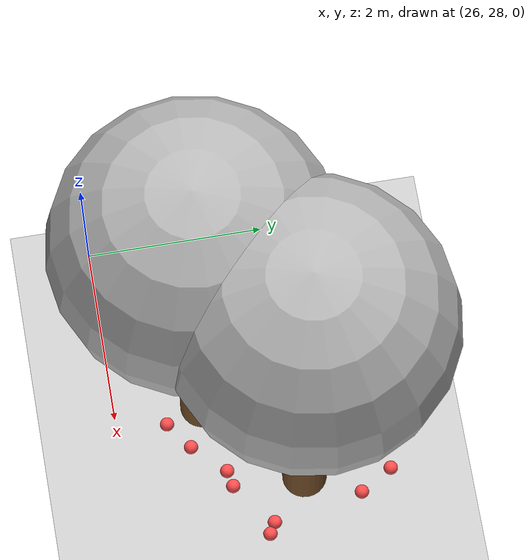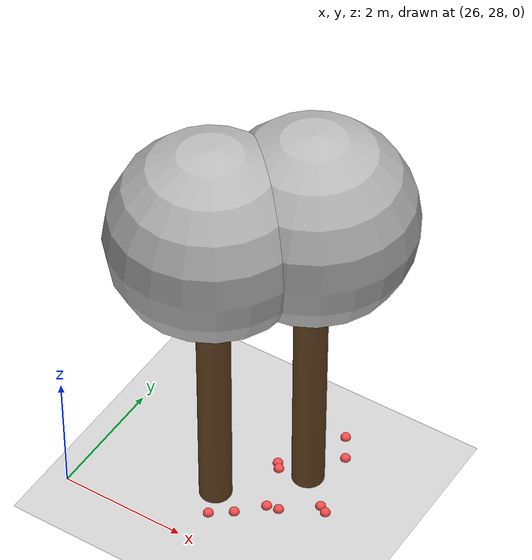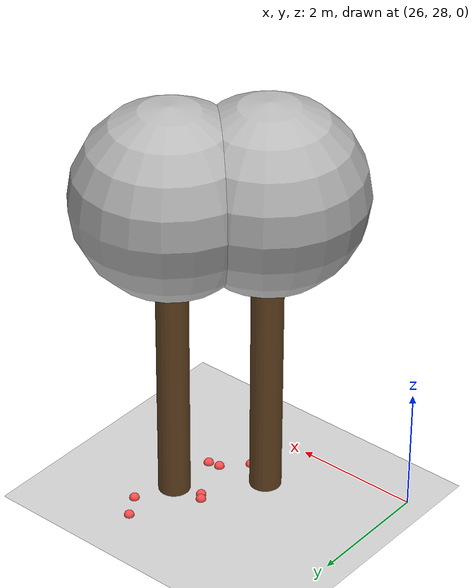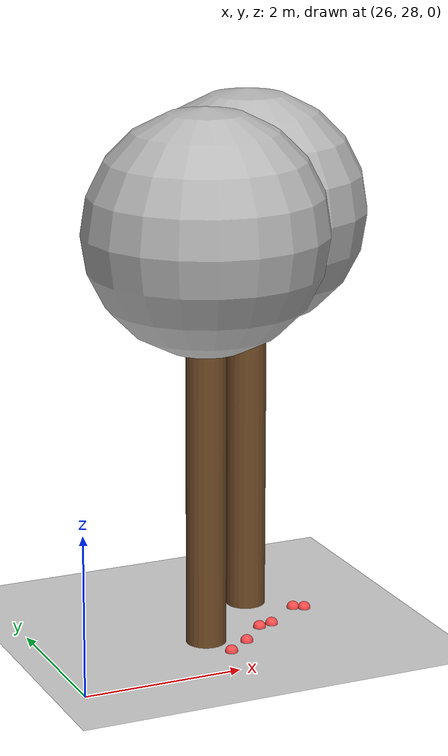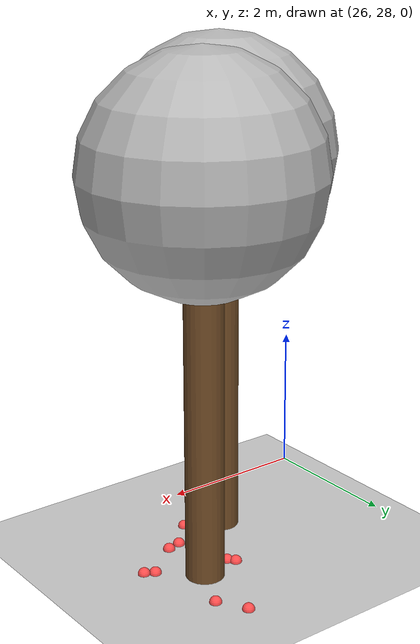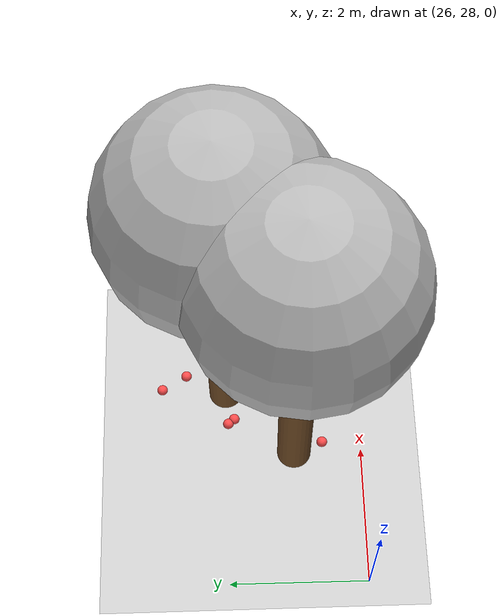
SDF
<sdf version="1.7">
 <world name="default">
  <model name="ground_plane">
   <static>1</static>
   <link name="link">
    <collision name="collision">
     <geometry><plane><normal>0 0 1</normal><size>100 100</size></plane></geometry>
     <surface>
      <contact><collide_bitmask>65535</collide_bitmask></contact>
      <friction><ode><mu>100</mu><mu2>50</mu2></ode></friction>
     </surface>
    </collision>
    <visual name="visual">
     <cast_shadows>0</cast_shadows>
     <geometry><plane><normal>0 0 1</normal><size>100 100</size></plane></geometry>
     <material>
      <script><uri>file://media/materials/scripts/gazebo.material</uri><name>Gazebo/Grey</name></script>
     </material>
    </visual>
   </link>
  </model>
  <model name="tree_simple_29">
   <static>1</static>
   <link name="link">
    <pose>0 0 0.1 0 -0 0</pose>
    <inertial>
     <mass>666</mass>
     <inertia>
      <ixx>0.0861167</ixx>
      <ixy>0</ixy>
      <ixz>0</ixz>
      <iyy>0.0861167</iyy>
      <iyz>0</iyz>
      <izz>0.0861167</izz>
     </inertia>
    </inertial>
    <collision name="collision_trunk">
     <pose>0 0 2 0 -0 0</pose>
     <geometry><cylinder><radius>0.25</radius><length>4</length></cylinder></geometry>
     <surface>
      <contact>
       <poissons_ratio>0.347</poissons_ratio>
       <elastic_modulus>8.8e+09</elastic_modulus>
       <ode><kp>100000</kp><kd>100</kd><max_vel>100</max_vel><min_depth>0.001</min_depth></ode>
      </contact>
      <friction>
       <torsional>
        <coefficient>1</coefficient>
        <use_patch_radius>0</use_patch_radius>
        <surface_radius>0.01</surface_radius>
       </torsional>
      </friction>
     </surface>
    </collision>
    <collision name="collision_treetop">
     <pose>0 0 5.2 0 -0 0</pose>
     <geometry><sphere><radius>1.5</radius></sphere></geometry>
     <surface>
      <contact>
       <poissons_ratio>0.347</poissons_ratio>
       <elastic_modulus>8.8e+09</elastic_modulus>
       <ode><kp>100000</kp><kd>100</kd><max_vel>100</max_vel><min_depth>0.001</min_depth></ode>
      </contact>
      <friction>
       <torsional>
        <coefficient>1</coefficient>
        <use_patch_radius>0</use_patch_radius>
        <surface_radius>0.01</surface_radius>
       </torsional>
      </friction>
     </surface>
    </collision>
    <visual name="trunk">
     <pose>0 0 2 0 -0 0</pose>
     <geometry><cylinder><radius>0.25</radius><length>4</length></cylinder></geometry>
     <material>
      <script>
       <uri>model://tree_simple/scripts</uri>
       <uri>model://tree_simple/materials/textures</uri>
       <name>TreeSimple/Trunk</name>
      </script>
     </material>
    </visual>
    <visual name="treetop">
     <pose>0 0 5.2 0 -0 0</pose>
     <geometry><sphere><radius>1.5</radius></sphere></geometry>
     <material>
      <script>
       <uri>model://tree_simple/scripts</uri>
       <uri>model://tree_simple/materials/textures</uri>
       <name>TreeSimple/Treetop</name>
      </script>
     </material>
    </visual>
   </link>
   <pose>29 30 -0.1 0 -0 0</pose>
  </model>
  <model name="tree_simple_31">
   <static>1</static>
   <link name="link">
    <pose>0 0 0.1 0 -0 0</pose>
    <inertial>
     <mass>666</mass>
     <inertia>
      <ixx>0.0861167</ixx>
      <ixy>0</ixy>
      <ixz>0</ixz>
      <iyy>0.0861167</iyy>
      <iyz>0</iyz>
      <izz>0.0861167</izz>
     </inertia>
    </inertial>
    <collision name="collision_trunk">
     <pose>0 0 2 0 -0 0</pose>
     <geometry><cylinder><radius>0.25</radius><length>4</length></cylinder></geometry>
     <surface>
      <contact>
       <poissons_ratio>0.347</poissons_ratio>
       <elastic_modulus>8.8e+09</elastic_modulus>
       <ode><kp>100000</kp><kd>100</kd><max_vel>100</max_vel><min_depth>0.001</min_depth></ode>
      </contact>
      <friction>
       <torsional>
        <coefficient>1</coefficient>
        <use_patch_radius>0</use_patch_radius>
        <surface_radius>0.01</surface_radius>
       </torsional>
      </friction>
     </surface>
    </collision>
    <collision name="collision_treetop">
     <pose>0 0 5.2 0 -0 0</pose>
     <geometry><sphere><radius>1.5</radius></sphere></geometry>
     <surface>
      <contact>
       <poissons_ratio>0.347</poissons_ratio>
       <elastic_modulus>8.8e+09</elastic_modulus>
       <ode><kp>100000</kp><kd>100</kd><max_vel>100</max_vel><min_depth>0.001</min_depth></ode>
      </contact>
      <friction>
       <torsional>
        <coefficient>1</coefficient>
        <use_patch_radius>0</use_patch_radius>
        <surface_radius>0.01</surface_radius>
       </torsional>
      </friction>
     </surface>
    </collision>
    <visual name="trunk">
     <pose>0 0 2 0 -0 0</pose>
     <geometry><cylinder><radius>0.25</radius><length>4</length></cylinder></geometry>
     <material>
      <script>
       <uri>model://tree_simple/scripts</uri>
       <uri>model://tree_simple/materials/textures</uri>
       <name>TreeSimple/Trunk</name>
      </script>
     </material>
    </visual>
    <visual name="treetop">
     <pose>0 0 5.2 0 -0 0</pose>
     <geometry><sphere><radius>1.5</radius></sphere></geometry>
     <material>
      <script>
       <uri>model://tree_simple/scripts</uri>
       <uri>model://tree_simple/materials/textures</uri>
       <name>TreeSimple/Treetop</name>
      </script>
     </material>
    </visual>
   </link>
   <pose>28 29 -0.1 0 -0 0</pose>
  </model>
  <model name="seed_red_124">
   <link name="link">
    <inertial>
     <mass>1</mass>
     <inertia><ixx>0.1</ixx><ixy>0</ixy><ixz>0</ixz><iyy>0.1</iyy><iyz>0</iyz><izz>0.1</izz></inertia>
    </inertial>
    <visual name="visual">
     <geometry><sphere><radius>0.08</radius></sphere></geometry>
     <material>
      <script><name>Gazebo/Grey</name><uri>file://media/materials/scripts/gazebo.material</uri></script>
      <shader type="pixel"><normal_map>__default__</normal_map></shader>
      <ambient>1 0.3 0.3 1</ambient>
      <diffuse>0.7 0.7 0.7 1</diffuse>
      <specular>0.01 0.01 0.01 1</specular>
      <emissive>0 0 0 1</emissive>
     </material>
    </visual>
    <collision name="collision">
     <geometry><sphere><radius>0.0005</radius></sphere></geometry>
     <surface>
      <friction>
       <ode><mu>1</mu><mu2>1</mu2><fdir1>0 0 0</fdir1><slip1>0</slip1><slip2>0</slip2></ode>
       <torsional>
        <coefficient>1</coefficient>
        <patch_radius>0</patch_radius>
        <surface_radius>0</surface_radius>
        <use_patch_radius>1</use_patch_radius>
        <ode><slip>0</slip></ode>
       </torsional>
      </friction>
      <bounce><restitution_coefficient>0</restitution_coefficient><threshold>1e+06</threshold></bounce>
      <contact>
       <collide_without_contact>0</collide_without_contact>
       <collide_without_contact_bitmask>1</collide_without_contact_bitmask>
       <collide_bitmask>1</collide_bitmask>
       <ode>
        <soft_cfm>0</soft_cfm>
        <soft_erp>0.2</soft_erp>
        <kp>1e+13</kp>
        <kd>1</kd>
        <max_vel>0.01</max_vel>
        <min_depth>0</min_depth>
       </ode>
       <bullet>
        <split_impulse>1</split_impulse>
        <split_impulse_penetration_threshold>-0.01</split_impulse_penetration_threshold>
        <soft_cfm>0</soft_cfm>
        <soft_erp>0.2</soft_erp>
        <kp>1e+13</kp>
        <kd>1</kd>
       </bullet>
      </contact>
     </surface>
    </collision>
   </link>
   <static>0</static>
   <pose>29.6052 29.5103 0.0005 0 -0 0</pose>
  </model>
  <model name="seed_red_125">
   <link name="link">
    <inertial>
     <mass>1</mass>
     <inertia><ixx>0.1</ixx><ixy>0</ixy><ixz>0</ixz><iyy>0.1</iyy><iyz>0</iyz><izz>0.1</izz></inertia>
    </inertial>
    <visual name="visual">
     <geometry><sphere><radius>0.08</radius></sphere></geometry>
     <material>
      <script><name>Gazebo/Grey</name><uri>file://media/materials/scripts/gazebo.material</uri></script>
      <shader type="pixel"><normal_map>__default__</normal_map></shader>
      <ambient>1 0.3 0.3 1</ambient>
      <diffuse>0.7 0.7 0.7 1</diffuse>
      <specular>0.01 0.01 0.01 1</specular>
      <emissive>0 0 0 1</emissive>
     </material>
    </visual>
    <collision name="collision">
     <geometry><sphere><radius>0.0005</radius></sphere></geometry>
     <surface>
      <friction>
       <ode><mu>1</mu><mu2>1</mu2><fdir1>0 0 0</fdir1><slip1>0</slip1><slip2>0</slip2></ode>
       <torsional>
        <coefficient>1</coefficient>
        <patch_radius>0</patch_radius>
        <surface_radius>0</surface_radius>
        <use_patch_radius>1</use_patch_radius>
        <ode><slip>0</slip></ode>
       </torsional>
      </friction>
      <bounce><restitution_coefficient>0</restitution_coefficient><threshold>1e+06</threshold></bounce>
      <contact>
       <collide_without_contact>0</collide_without_contact>
       <collide_without_contact_bitmask>1</collide_without_contact_bitmask>
       <collide_bitmask>1</collide_bitmask>
       <ode>
        <soft_cfm>0</soft_cfm>
        <soft_erp>0.2</soft_erp>
        <kp>1e+13</kp>
        <kd>1</kd>
        <max_vel>0.01</max_vel>
        <min_depth>0</min_depth>
       </ode>
       <bullet>
        <split_impulse>1</split_impulse>
        <split_impulse_penetration_threshold>-0.01</split_impulse_penetration_threshold>
        <soft_cfm>0</soft_cfm>
        <soft_erp>0.2</soft_erp>
        <kp>1e+13</kp>
        <kd>1</kd>
       </bullet>
      </contact>
     </surface>
    </collision>
   </link>
   <static>0</static>
   <pose>29.4799 29.5819 0.0005 0 -0 0</pose>
  </model>
  <model name="seed_red_126">
   <link name="link">
    <inertial>
     <mass>1</mass>
     <inertia><ixx>0.1</ixx><ixy>0</ixy><ixz>0</ixz><iyy>0.1</iyy><iyz>0</iyz><izz>0.1</izz></inertia>
    </inertial>
    <visual name="visual">
     <geometry><sphere><radius>0.08</radius></sphere></geometry>
     <material>
      <script><name>Gazebo/Grey</name><uri>file://media/materials/scripts/gazebo.material</uri></script>
      <shader type="pixel"><normal_map>__default__</normal_map></shader>
      <ambient>1 0.3 0.3 1</ambient>
      <diffuse>0.7 0.7 0.7 1</diffuse>
      <specular>0.01 0.01 0.01 1</specular>
      <emissive>0 0 0 1</emissive>
     </material>
    </visual>
    <collision name="collision">
     <geometry><sphere><radius>0.0005</radius></sphere></geometry>
     <surface>
      <friction>
       <ode><mu>1</mu><mu2>1</mu2><fdir1>0 0 0</fdir1><slip1>0</slip1><slip2>0</slip2></ode>
       <torsional>
        <coefficient>1</coefficient>
        <patch_radius>0</patch_radius>
        <surface_radius>0</surface_radius>
        <use_patch_radius>1</use_patch_radius>
        <ode><slip>0</slip></ode>
       </torsional>
      </friction>
      <bounce><restitution_coefficient>0</restitution_coefficient><threshold>1e+06</threshold></bounce>
      <contact>
       <collide_without_contact>0</collide_without_contact>
       <collide_without_contact_bitmask>1</collide_without_contact_bitmask>
       <collide_bitmask>1</collide_bitmask>
       <ode>
        <soft_cfm>0</soft_cfm>
        <soft_erp>0.2</soft_erp>
        <kp>1e+13</kp>
        <kd>1</kd>
        <max_vel>0.01</max_vel>
        <min_depth>0</min_depth>
       </ode>
       <bullet>
        <split_impulse>1</split_impulse>
        <split_impulse_penetration_threshold>-0.01</split_impulse_penetration_threshold>
        <soft_cfm>0</soft_cfm>
        <soft_erp>0.2</soft_erp>
        <kp>1e+13</kp>
        <kd>1</kd>
       </bullet>
      </contact>
     </surface>
    </collision>
   </link>
   <static>0</static>
   <pose>29.0686 30.9736 0.0005 0 -0 0</pose>
  </model>
  <model name="seed_red_127">
   <link name="link">
    <inertial>
     <mass>1</mass>
     <inertia><ixx>0.1</ixx><ixy>0</ixy><ixz>0</ixz><iyy>0.1</iyy><iyz>0</iyz><izz>0.1</izz></inertia>
    </inertial>
    <visual name="visual">
     <geometry><sphere><radius>0.08</radius></sphere></geometry>
     <material>
      <script><name>Gazebo/Grey</name><uri>file://media/materials/scripts/gazebo.material</uri></script>
      <shader type="pixel"><normal_map>__default__</normal_map></shader>
      <ambient>1 0.3 0.3 1</ambient>
      <diffuse>0.7 0.7 0.7 1</diffuse>
      <specular>0.01 0.01 0.01 1</specular>
      <emissive>0 0 0 1</emissive>
     </material>
    </visual>
    <collision name="collision">
     <geometry><sphere><radius>0.0005</radius></sphere></geometry>
     <surface>
      <friction>
       <ode><mu>1</mu><mu2>1</mu2><fdir1>0 0 0</fdir1><slip1>0</slip1><slip2>0</slip2></ode>
       <torsional>
        <coefficient>1</coefficient>
        <patch_radius>0</patch_radius>
        <surface_radius>0</surface_radius>
        <use_patch_radius>1</use_patch_radius>
        <ode><slip>0</slip></ode>
       </torsional>
      </friction>
      <bounce><restitution_coefficient>0</restitution_coefficient><threshold>1e+06</threshold></bounce>
      <contact>
       <collide_without_contact>0</collide_without_contact>
       <collide_without_contact_bitmask>1</collide_without_contact_bitmask>
       <collide_bitmask>1</collide_bitmask>
       <ode>
        <soft_cfm>0</soft_cfm>
        <soft_erp>0.2</soft_erp>
        <kp>1e+13</kp>
        <kd>1</kd>
        <max_vel>0.01</max_vel>
        <min_depth>0</min_depth>
       </ode>
       <bullet>
        <split_impulse>1</split_impulse>
        <split_impulse_penetration_threshold>-0.01</split_impulse_penetration_threshold>
        <soft_cfm>0</soft_cfm>
        <soft_erp>0.2</soft_erp>
        <kp>1e+13</kp>
        <kd>1</kd>
       </bullet>
      </contact>
     </surface>
    </collision>
   </link>
   <static>0</static>
   <pose>29.2906 30.6048 0.0005 0 -0 0</pose>
  </model>
  <model name="seed_red_128">
   <link name="link">
    <inertial>
     <mass>1</mass>
     <inertia><ixx>0.1</ixx><ixy>0</ixy><ixz>0</ixz><iyy>0.1</iyy><iyz>0</iyz><izz>0.1</izz></inertia>
    </inertial>
    <visual name="visual">
     <geometry><sphere><radius>0.08</radius></sphere></geometry>
     <material>
      <script><name>Gazebo/Grey</name><uri>file://media/materials/scripts/gazebo.material</uri></script>
      <shader type="pixel"><normal_map>__default__</normal_map></shader>
      <ambient>1 0.3 0.3 1</ambient>
      <diffuse>0.7 0.7 0.7 1</diffuse>
      <specular>0.01 0.01 0.01 1</specular>
      <emissive>0 0 0 1</emissive>
     </material>
    </visual>
    <collision name="collision">
     <geometry><sphere><radius>0.0005</radius></sphere></geometry>
     <surface>
      <friction>
       <ode><mu>1</mu><mu2>1</mu2><fdir1>0 0 0</fdir1><slip1>0</slip1><slip2>0</slip2></ode>
       <torsional>
        <coefficient>1</coefficient>
        <patch_radius>0</patch_radius>
        <surface_radius>0</surface_radius>
        <use_patch_radius>1</use_patch_radius>
        <ode><slip>0</slip></ode>
       </torsional>
      </friction>
      <bounce><restitution_coefficient>0</restitution_coefficient><threshold>1e+06</threshold></bounce>
      <contact>
       <collide_without_contact>0</collide_without_contact>
       <collide_without_contact_bitmask>1</collide_without_contact_bitmask>
       <collide_bitmask>1</collide_bitmask>
       <ode>
        <soft_cfm>0</soft_cfm>
        <soft_erp>0.2</soft_erp>
        <kp>1e+13</kp>
        <kd>1</kd>
        <max_vel>0.01</max_vel>
        <min_depth>0</min_depth>
       </ode>
       <bullet>
        <split_impulse>1</split_impulse>
        <split_impulse_penetration_threshold>-0.01</split_impulse_penetration_threshold>
        <soft_cfm>0</soft_cfm>
        <soft_erp>0.2</soft_erp>
        <kp>1e+13</kp>
        <kd>1</kd>
       </bullet>
      </contact>
     </surface>
    </collision>
   </link>
   <static>0</static>
   <pose>28.9891 29.1913 0.0005 0 -0 0</pose>
  </model>
  <model name="seed_red_129">
   <link name="link">
    <inertial>
     <mass>1</mass>
     <inertia><ixx>0.1</ixx><ixy>0</ixy><ixz>0</ixz><iyy>0.1</iyy><iyz>0</iyz><izz>0.1</izz></inertia>
    </inertial>
    <visual name="visual">
     <geometry><sphere><radius>0.08</radius></sphere></geometry>
     <material>
      <script><name>Gazebo/Grey</name><uri>file://media/materials/scripts/gazebo.material</uri></script>
      <shader type="pixel"><normal_map>__default__</normal_map></shader>
      <ambient>1 0.3 0.3 1</ambient>
      <diffuse>0.7 0.7 0.7 1</diffuse>
      <specular>0.01 0.01 0.01 1</specular>
      <emissive>0 0 0 1</emissive>
     </material>
    </visual>
    <collision name="collision">
     <geometry><sphere><radius>0.0005</radius></sphere></geometry>
     <surface>
      <friction>
       <ode><mu>1</mu><mu2>1</mu2><fdir1>0 0 0</fdir1><slip1>0</slip1><slip2>0</slip2></ode>
       <torsional>
        <coefficient>1</coefficient>
        <patch_radius>0</patch_radius>
        <surface_radius>0</surface_radius>
        <use_patch_radius>1</use_patch_radius>
        <ode><slip>0</slip></ode>
       </torsional>
      </friction>
      <bounce><restitution_coefficient>0</restitution_coefficient><threshold>1e+06</threshold></bounce>
      <contact>
       <collide_without_contact>0</collide_without_contact>
       <collide_without_contact_bitmask>1</collide_without_contact_bitmask>
       <collide_bitmask>1</collide_bitmask>
       <ode>
        <soft_cfm>0</soft_cfm>
        <soft_erp>0.2</soft_erp>
        <kp>1e+13</kp>
        <kd>1</kd>
        <max_vel>0.01</max_vel>
        <min_depth>0</min_depth>
       </ode>
       <bullet>
        <split_impulse>1</split_impulse>
        <split_impulse_penetration_threshold>-0.01</split_impulse_penetration_threshold>
        <soft_cfm>0</soft_cfm>
        <soft_erp>0.2</soft_erp>
        <kp>1e+13</kp>
        <kd>1</kd>
       </bullet>
      </contact>
     </surface>
    </collision>
   </link>
   <static>0</static>
   <pose>28.4834 29.974 0.0005 0 -0 0</pose>
  </model>
  <model name="seed_red_131">
   <link name="link">
    <inertial>
     <mass>1</mass>
     <inertia><ixx>0.1</ixx><ixy>0</ixy><ixz>0</ixz><iyy>0.1</iyy><iyz>0</iyz><izz>0.1</izz></inertia>
    </inertial>
    <visual name="visual">
     <geometry><sphere><radius>0.08</radius></sphere></geometry>
     <material>
      <script><name>Gazebo/Grey</name><uri>file://media/materials/scripts/gazebo.material</uri></script>
      <shader type="pixel"><normal_map>__default__</normal_map></shader>
      <ambient>1 0.3 0.3 1</ambient>
      <diffuse>0.7 0.7 0.7 1</diffuse>
      <specular>0.01 0.01 0.01 1</specular>
      <emissive>0 0 0 1</emissive>
     </material>
    </visual>
    <collision name="collision">
     <geometry><sphere><radius>0.0005</radius></sphere></geometry>
     <surface>
      <friction>
       <ode><mu>1</mu><mu2>1</mu2><fdir1>0 0 0</fdir1><slip1>0</slip1><slip2>0</slip2></ode>
       <torsional>
        <coefficient>1</coefficient>
        <patch_radius>0</patch_radius>
        <surface_radius>0</surface_radius>
        <use_patch_radius>1</use_patch_radius>
        <ode><slip>0</slip></ode>
       </torsional>
      </friction>
      <bounce><restitution_coefficient>0</restitution_coefficient><threshold>1e+06</threshold></bounce>
      <contact>
       <collide_without_contact>0</collide_without_contact>
       <collide_without_contact_bitmask>1</collide_without_contact_bitmask>
       <collide_bitmask>1</collide_bitmask>
       <ode>
        <soft_cfm>0</soft_cfm>
        <soft_erp>0.2</soft_erp>
        <kp>1e+13</kp>
        <kd>1</kd>
        <max_vel>0.01</max_vel>
        <min_depth>0</min_depth>
       </ode>
       <bullet>
        <split_impulse>1</split_impulse>
        <split_impulse_penetration_threshold>-0.01</split_impulse_penetration_threshold>
        <soft_cfm>0</soft_cfm>
        <soft_erp>0.2</soft_erp>
        <kp>1e+13</kp>
        <kd>1</kd>
       </bullet>
      </contact>
     </surface>
    </collision>
   </link>
   <static>0</static>
   <pose>28.5565 29.883 0.0005 0 -0 0</pose>
  </model>
  <model name="seed_red_141">
   <link name="link">
    <inertial>
     <mass>1</mass>
     <inertia><ixx>0.1</ixx><ixy>0</ixy><ixz>0</ixz><iyy>0.1</iyy><iyz>0</iyz><izz>0.1</izz></inertia>
    </inertial>
    <visual name="visual">
     <geometry><sphere><radius>0.08</radius></sphere></geometry>
     <material>
      <script><name>Gazebo/Grey</name><uri>file://media/materials/scripts/gazebo.material</uri></script>
      <shader type="pixel"><normal_map>__default__</normal_map></shader>
      <ambient>1 0.3 0.3 1</ambient>
      <diffuse>0.7 0.7 0.7 1</diffuse>
      <specular>0.01 0.01 0.01 1</specular>
      <emissive>0 0 0 1</emissive>
     </material>
    </visual>
    <collision name="collision">
     <geometry><sphere><radius>0.0005</radius></sphere></geometry>
     <surface>
      <friction>
       <ode><mu>1</mu><mu2>1</mu2><fdir1>0 0 0</fdir1><slip1>0</slip1><slip2>0</slip2></ode>
       <torsional>
        <coefficient>1</coefficient>
        <patch_radius>0</patch_radius>
        <surface_radius>0</surface_radius>
        <use_patch_radius>1</use_patch_radius>
        <ode><slip>0</slip></ode>
       </torsional>
      </friction>
      <bounce><restitution_coefficient>0</restitution_coefficient><threshold>1e+06</threshold></bounce>
      <contact>
       <collide_without_contact>0</collide_without_contact>
       <collide_without_contact_bitmask>1</collide_without_contact_bitmask>
       <collide_bitmask>1</collide_bitmask>
       <ode>
        <soft_cfm>0</soft_cfm>
        <soft_erp>0.2</soft_erp>
        <kp>1e+13</kp>
        <kd>1</kd>
        <max_vel>0.01</max_vel>
        <min_depth>0</min_depth>
       </ode>
       <bullet>
        <split_impulse>1</split_impulse>
        <split_impulse_penetration_threshold>-0.01</split_impulse_penetration_threshold>
        <soft_cfm>0</soft_cfm>
        <soft_erp>0.2</soft_erp>
        <kp>1e+13</kp>
        <kd>1</kd>
       </bullet>
      </contact>
     </surface>
    </collision>
   </link>
   <static>0</static>
   <pose>28.4609 28.796 0.0005 0 -0 0</pose>
  </model>
  <model name="seed_red_143">
   <link name="link">
    <inertial>
     <mass>1</mass>
     <inertia><ixx>0.1</ixx><ixy>0</ixy><ixz>0</ixz><iyy>0.1</iyy><iyz>0</iyz><izz>0.1</izz></inertia>
    </inertial>
    <visual name="visual">
     <geometry><sphere><radius>0.08</radius></sphere></geometry>
     <material>
      <script><name>Gazebo/Grey</name><uri>file://media/materials/scripts/gazebo.material</uri></script>
      <shader type="pixel"><normal_map>__default__</normal_map></shader>
      <ambient>1 0.3 0.3 1</ambient>
      <diffuse>0.7 0.7 0.7 1</diffuse>
      <specular>0.01 0.01 0.01 1</specular>
      <emissive>0 0 0 1</emissive>
     </material>
    </visual>
    <collision name="collision">
     <geometry><sphere><radius>0.0005</radius></sphere></geometry>
     <surface>
      <friction>
       <ode><mu>1</mu><mu2>1</mu2><fdir1>0 0 0</fdir1><slip1>0</slip1><slip2>0</slip2></ode>
       <torsional>
        <coefficient>1</coefficient>
        <patch_radius>0</patch_radius>
        <surface_radius>0</surface_radius>
        <use_patch_radius>1</use_patch_radius>
        <ode><slip>0</slip></ode>
       </torsional>
      </friction>
      <bounce><restitution_coefficient>0</restitution_coefficient><threshold>1e+06</threshold></bounce>
      <contact>
       <collide_without_contact>0</collide_without_contact>
       <collide_without_contact_bitmask>1</collide_without_contact_bitmask>
       <collide_bitmask>1</collide_bitmask>
       <ode>
        <soft_cfm>0</soft_cfm>
        <soft_erp>0.2</soft_erp>
        <kp>1e+13</kp>
        <kd>1</kd>
        <max_vel>0.01</max_vel>
        <min_depth>0</min_depth>
       </ode>
       <bullet>
        <split_impulse>1</split_impulse>
        <split_impulse_penetration_threshold>-0.01</split_impulse_penetration_threshold>
        <soft_cfm>0</soft_cfm>
        <soft_erp>0.2</soft_erp>
        <kp>1e+13</kp>
        <kd>1</kd>
       </bullet>
      </contact>
     </surface>
    </collision>
   </link>
   <static>0</static>
   <pose>28.1503 28.5709 0.0005 0 -0 0</pose>
  </model>
  <model name="seed_red_144">
   <link name="link">
    <inertial>
     <mass>1</mass>
     <inertia><ixx>0.1</ixx><ixy>0</ixy><ixz>0</ixz><iyy>0.1</iyy><iyz>0</iyz><izz>0.1</izz></inertia>
    </inertial>
    <visual name="visual">
     <geometry><sphere><radius>0.08</radius></sphere></geometry>
     <material>
      <script><name>Gazebo/Grey</name><uri>file://media/materials/scripts/gazebo.material</uri></script>
      <shader type="pixel"><normal_map>__default__</normal_map></shader>
      <ambient>1 0.3 0.3 1</ambient>
      <diffuse>0.7 0.7 0.7 1</diffuse>
      <specular>0.01 0.01 0.01 1</specular>
      <emissive>0 0 0 1</emissive>
     </material>
    </visual>
    <collision name="collision">
     <geometry><sphere><radius>0.0005</radius></sphere></geometry>
     <surface>
      <friction>
       <ode><mu>1</mu><mu2>1</mu2><fdir1>0 0 0</fdir1><slip1>0</slip1><slip2>0</slip2></ode>
       <torsional>
        <coefficient>1</coefficient>
        <patch_radius>0</patch_radius>
        <surface_radius>0</surface_radius>
        <use_patch_radius>1</use_patch_radius>
        <ode><slip>0</slip></ode>
       </torsional>
      </friction>
      <bounce><restitution_coefficient>0</restitution_coefficient><threshold>1e+06</threshold></bounce>
      <contact>
       <collide_without_contact>0</collide_without_contact>
       <collide_without_contact_bitmask>1</collide_without_contact_bitmask>
       <collide_bitmask>1</collide_bitmask>
       <ode>
        <soft_cfm>0</soft_cfm>
        <soft_erp>0.2</soft_erp>
        <kp>1e+13</kp>
        <kd>1</kd>
        <max_vel>0.01</max_vel>
        <min_depth>0</min_depth>
       </ode>
       <bullet>
        <split_impulse>1</split_impulse>
        <split_impulse_penetration_threshold>-0.01</split_impulse_penetration_threshold>
        <soft_cfm>0</soft_cfm>
        <soft_erp>0.2</soft_erp>
        <kp>1e+13</kp>
        <kd>1</kd>
       </bullet>
      </contact>
     </surface>
    </collision>
   </link>
   <static>0</static>
   <pose>28.804 29.153 0.0005 0 -0 0</pose>
  </model>
 </world>
</sdf>
